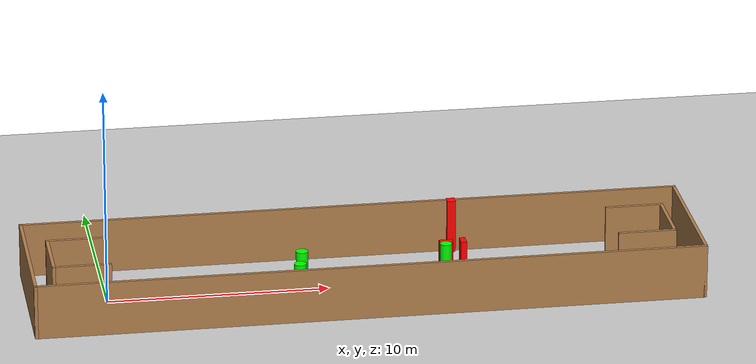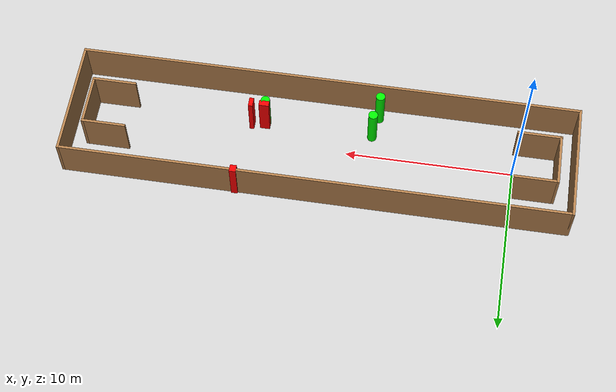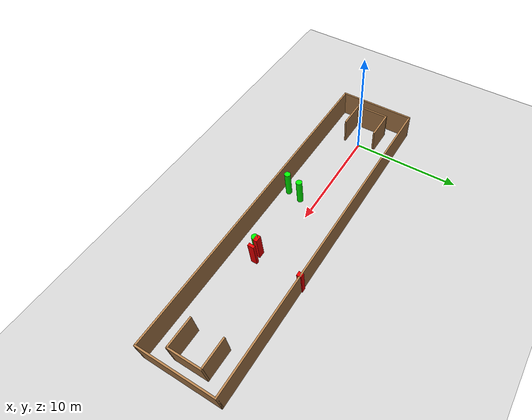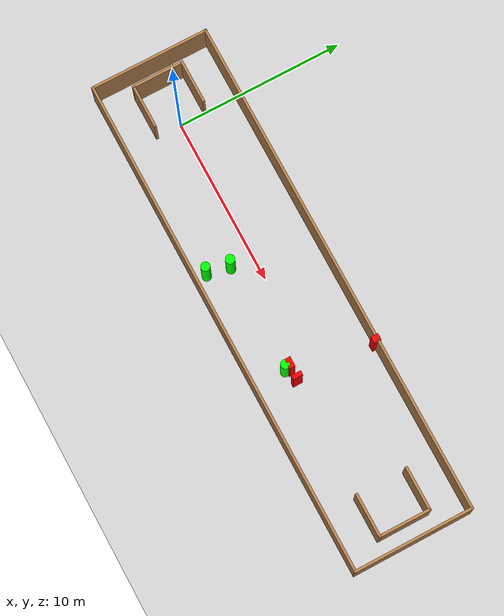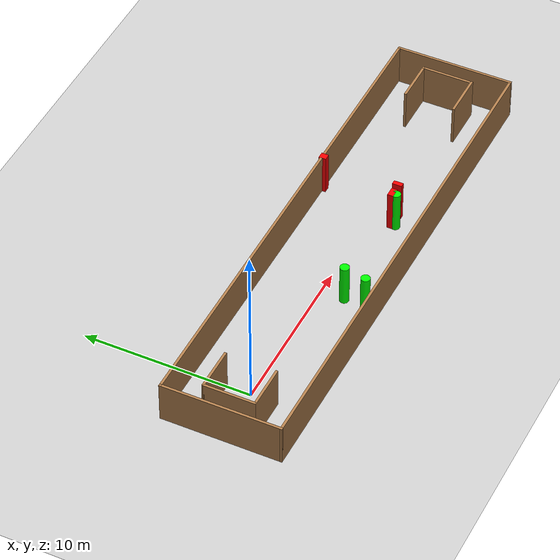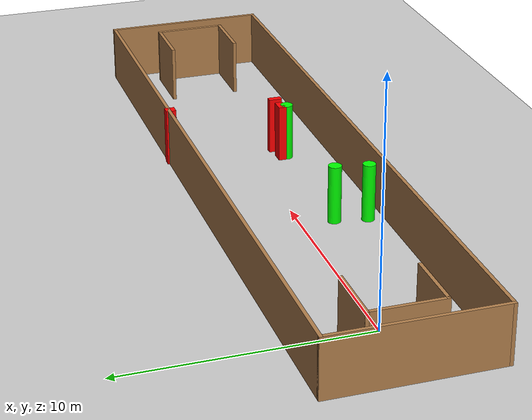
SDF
<sdf version="1.7">
 <world name="default">
  <light name="sun" type="directional">
   <pose>0 0 10 0 -0 0</pose>
   <diffuse>0.8 0.8 0.8 1</diffuse>
   <specular>0.2 0.2 0.2 1</specular>
   <attenuation>
    <range>1000</range>
    <constant>0.9</constant>
    <linear>0.01</linear>
    <quadratic>0.001</quadratic>
   </attenuation>
   <direction>-0.5 0.1 -0.9</direction>
   <spot><inner_angle>0</inner_angle><outer_angle>0</outer_angle><falloff>0</falloff></spot>
  </light>
  <model name="ground_plane">
   <static>1</static>
   <link name="link">
    <collision name="collision">
     <geometry><plane><normal>0 0 1</normal><size>100 100</size></plane></geometry>
     <surface>
      <contact><collide_bitmask>65535</collide_bitmask></contact>
      <friction><ode><mu>100</mu><mu2>50</mu2></ode></friction>
     </surface>
    </collision>
    <visual name="visual">
     <cast_shadows>0</cast_shadows>
     <geometry><plane><normal>0 0 1</normal><size>100 100</size></plane></geometry>
     <material>
      <script><uri>file://media/materials/scripts/gazebo.material</uri><name>Gazebo/Grey</name></script>
     </material>
    </visual>
   </link>
  </model>
  <gravity>0 0 -9.8</gravity>
  <magnetic_field>6e-06 2.3e-05 -4.2e-05</magnetic_field>
  <atmosphere type="adiabatic"/>
  <physics type="ode">
   <max_step_size>0.001</max_step_size>
   <real_time_factor>1</real_time_factor>
   <real_time_update_rate>1000</real_time_update_rate>
  </physics>
  <scene><ambient>0.4 0.4 0.4 1</ambient><background>0.7 0.7 0.7 1</background><shadows>1</shadows></scene>
  <spherical_coordinates>
   <surface_model>EARTH_WGS84</surface_model>
   <latitude_deg>0</latitude_deg>
   <longitude_deg>0</longitude_deg>
   <elevation>0</elevation>
   <heading_deg>0</heading_deg>
  </spherical_coordinates>
  <model name="my_base_walls">
   <link name="Wall_0">
    <collision name="Wall_0_Collision">
     <geometry><box><size>7.15 0.15 2.5</size></box></geometry>
     <pose>0 0 1.25 0 -0 0</pose>
    </collision>
    <visual name="Wall_0_Visual">
     <pose>0 0 1.25 0 -0 0</pose>
     <geometry><box><size>7.15 0.15 2.5</size></box></geometry>
     <material>
      <script><uri>file://media/materials/scripts/gazebo.material</uri><name>Gazebo/Wood</name></script>
      <ambient>1 1 1 1</ambient>
     </material>
     <meta><layer>0</layer></meta>
    </visual>
    <pose>-15 0 0 0 -0 1.5708</pose>
   </link>
   <link name="Wall_10">
    <collision name="Wall_10_Collision">
     <geometry><box><size>2.65 0.15 2.5</size></box></geometry>
     <pose>0 0 1.25 0 -0 0</pose>
    </collision>
    <visual name="Wall_10_Visual">
     <pose>0 0 1.25 0 -0 0</pose>
     <geometry><box><size>2.65 0.15 2.5</size></box></geometry>
     <material>
      <script><uri>file://media/materials/scripts/gazebo.material</uri><name>Gazebo/Wood</name></script>
      <ambient>1 1 1 1</ambient>
     </material>
     <meta><layer>0</layer></meta>
    </visual>
    <pose>-12.75 -1.5 0 0 -0 0</pose>
   </link>
   <link name="Wall_12">
    <collision name="Wall_12_Collision">
     <geometry><box><size>2.65 0.15 2.5</size></box></geometry>
     <pose>0 0 1.25 0 -0 0</pose>
    </collision>
    <visual name="Wall_12_Visual">
     <pose>0 0 1.25 0 -0 0</pose>
     <geometry><box><size>2.65 0.15 2.5</size></box></geometry>
     <material>
      <script><uri>file://media/materials/scripts/gazebo.material</uri><name>Gazebo/Wood</name></script>
      <ambient>1 1 1 1</ambient>
     </material>
     <meta><layer>0</layer></meta>
    </visual>
    <pose>-12.75 1.5 0 0 -0 0</pose>
   </link>
   <link name="Wall_14">
    <collision name="Wall_14_Collision">
     <geometry><box><size>3.15 0.15 2.5</size></box></geometry>
     <pose>0 0 1.25 0 -0 0</pose>
    </collision>
    <visual name="Wall_14_Visual">
     <pose>0 0 1.25 0 -0 0</pose>
     <geometry><box><size>3.15 0.15 2.5</size></box></geometry>
     <material>
      <script><uri>file://media/materials/scripts/gazebo.material</uri><name>Gazebo/Wood</name></script>
      <ambient>1 1 1 1</ambient>
     </material>
     <meta><layer>0</layer></meta>
    </visual>
    <pose>14 0 0 0 -0 -1.5708</pose>
   </link>
   <link name="Wall_15">
    <collision name="Wall_15_Collision">
     <geometry><box><size>2.65 0.15 2.5</size></box></geometry>
     <pose>0 0 1.25 0 -0 0</pose>
    </collision>
    <visual name="Wall_15_Visual">
     <pose>0 0 1.25 0 -0 0</pose>
     <geometry><box><size>2.65 0.15 2.5</size></box></geometry>
     <material>
      <script><uri>file://media/materials/scripts/gazebo.material</uri><name>Gazebo/Wood</name></script>
      <ambient>1 1 1 1</ambient>
     </material>
     <meta><layer>0</layer></meta>
    </visual>
    <pose>12.75 -1.5 0 0 -0 3.14159</pose>
   </link>
   <link name="Wall_17">
    <collision name="Wall_17_Collision">
     <geometry><box><size>2.65 0.15 2.5</size></box></geometry>
     <pose>0 0 1.25 0 -0 0</pose>
    </collision>
    <visual name="Wall_17_Visual">
     <pose>0 0 1.25 0 -0 0</pose>
     <geometry><box><size>2.65 0.15 2.5</size></box></geometry>
     <material>
      <script><uri>file://media/materials/scripts/gazebo.material</uri><name>Gazebo/Wood</name></script>
      <ambient>1 1 1 1</ambient>
     </material>
     <meta><layer>0</layer></meta>
    </visual>
    <pose>12.75 1.5 0 0 -0 3.14159</pose>
   </link>
   <link name="Wall_2">
    <collision name="Wall_2_Collision">
     <geometry><box><size>30.15 0.15 2.5</size></box></geometry>
     <pose>0 0 1.25 0 -0 0</pose>
    </collision>
    <visual name="Wall_2_Visual">
     <pose>0 0 1.25 0 -0 0</pose>
     <geometry><box><size>30.15 0.15 2.5</size></box></geometry>
     <material>
      <script><uri>file://media/materials/scripts/gazebo.material</uri><name>Gazebo/Wood</name></script>
      <ambient>1 1 1 1</ambient>
     </material>
     <meta><layer>0</layer></meta>
    </visual>
    <pose>-0 -3.5 0 0 -0 0</pose>
   </link>
   <link name="Wall_4">
    <collision name="Wall_4_Collision">
     <geometry><box><size>30.15 0.15 2.5</size></box></geometry>
     <pose>0 0 1.25 0 -0 0</pose>
    </collision>
    <visual name="Wall_4_Visual">
     <pose>0 0 1.25 0 -0 0</pose>
     <geometry><box><size>30.15 0.15 2.5</size></box></geometry>
     <material>
      <script><uri>file://media/materials/scripts/gazebo.material</uri><name>Gazebo/Wood</name></script>
      <ambient>1 1 1 1</ambient>
     </material>
     <meta><layer>0</layer></meta>
    </visual>
    <pose>-0 3.5 0 0 -0 0</pose>
   </link>
   <link name="Wall_6">
    <collision name="Wall_6_Collision">
     <geometry><box><size>7.15 0.15 2.5</size></box></geometry>
     <pose>0 0 1.25 0 -0 0</pose>
    </collision>
    <visual name="Wall_6_Visual">
     <pose>0 0 1.25 0 -0 0</pose>
     <geometry><box><size>7.15 0.15 2.5</size></box></geometry>
     <material>
      <script><uri>file://media/materials/scripts/gazebo.material</uri><name>Gazebo/Wood</name></script>
      <ambient>1 1 1 1</ambient>
     </material>
     <meta><layer>0</layer></meta>
    </visual>
    <pose>15 0 0 0 -0 -1.5708</pose>
   </link>
   <link name="Wall_9">
    <collision name="Wall_9_Collision">
     <geometry><box><size>3.15 0.15 2.5</size></box></geometry>
     <pose>0 0 1.25 0 -0 0</pose>
    </collision>
    <visual name="Wall_9_Visual">
     <pose>0 0 1.25 0 -0 0</pose>
     <geometry><box><size>3.15 0.15 2.5</size></box></geometry>
     <material>
      <script><uri>file://media/materials/scripts/gazebo.material</uri><name>Gazebo/Wood</name></script>
      <ambient>1 1 1 1</ambient>
     </material>
     <meta><layer>0</layer></meta>
    </visual>
    <pose>-14 0 0 0 -0 -1.5708</pose>
   </link>
   <static>1</static>
   <pose>11.5 0 0 0 -0 0</pose>
  </model>
  <model name="cylinder1">
   <static>1</static>
   <link name="link">
    <inertial>
     <mass>1</mass>
     <inertia><ixx>0.5</ixx><ixy>0</ixy><ixz>0</ixz><iyy>0.5</iyy><iyz>0</iyz><izz>1</izz></inertia>
    </inertial>
    <collision name="collision">
     <geometry><cylinder><radius>0.2720913923088007</radius><length>2.5</length></cylinder></geometry>
    </collision>
    <visual name="visual">
     <geometry><cylinder><radius>0.2720913923088007</radius><length>2.5</length></cylinder></geometry>
     <material>
      <ambient>0 1 0 1</ambient>
      <diffuse>0 1 0 1</diffuse>
      <specular>0.1 0.1 0.1 1</specular>
      <emissive>0 0 0 0</emissive>
     </material>
    </visual>
   </link>
   <pose>8.324206625020059 -2.7683398369764705 1.25 0 0 0</pose>
  </model>
  <model name="cylinder2">
   <static>1</static>
   <link name="link">
    <inertial>
     <mass>1</mass>
     <inertia><ixx>0.5</ixx><ixy>0</ixy><ixz>0</ixz><iyy>0.5</iyy><iyz>0</iyz><izz>1</izz></inertia>
    </inertial>
    <collision name="collision">
     <geometry><cylinder><radius>0.2686031411920399</radius><length>2.5</length></cylinder></geometry>
    </collision>
    <visual name="visual">
     <geometry><cylinder><radius>0.2686031411920399</radius><length>2.5</length></cylinder></geometry>
     <material>
      <ambient>0 1 0 1</ambient>
      <diffuse>0 1 0 1</diffuse>
      <specular>0.1 0.1 0.1 1</specular>
      <emissive>0 0 0 0</emissive>
     </material>
    </visual>
   </link>
   <pose>15.073153490086513 -1.5103302664237552 1.25 0 0 0</pose>
  </model>
  <model name="cylinder3">
   <static>1</static>
   <link name="link">
    <inertial>
     <mass>1</mass>
     <inertia><ixx>0.5</ixx><ixy>0</ixy><ixz>0</ixz><iyy>0.5</iyy><iyz>0</iyz><izz>1</izz></inertia>
    </inertial>
    <collision name="collision">
     <geometry><cylinder><radius>0.27674340920041784</radius><length>2.5</length></cylinder></geometry>
    </collision>
    <visual name="visual">
     <geometry><cylinder><radius>0.27674340920041784</radius><length>2.5</length></cylinder></geometry>
     <material>
      <ambient>0 1 0 1</ambient>
      <diffuse>0 1 0 1</diffuse>
      <specular>0.1 0.1 0.1 1</specular>
      <emissive>0 0 0 0</emissive>
     </material>
    </visual>
   </link>
   <pose>8.595148907303532 -1.4018542603949387 1.25 0 0 0</pose>
  </model>
  <model name="box1">
   <static>1</static>
   <link name="link">
    <inertial>
     <mass>1</mass>
     <inertia><ixx>0.083</ixx><ixy>0</ixy><ixz>0</ixz><iyy>0.083</iyy><iyz>0</iyz><izz>0.083</izz></inertia>
    </inertial>
    <collision name="collision">
     <geometry><box><size>0.26197331507720556 0.5692326307799982 2.5</size></box></geometry>
    </collision>
    <visual name="visual">
     <geometry><box><size>0.26197331507720556 0.5692326307799982 2.5</size></box></geometry>
     <material>
      <ambient>1 0 0 1</ambient>
      <diffuse>1 0 0 1</diffuse>
      <specular>0.1 0.1 0.1 1</specular>
      <emissive>0 0 0 0</emissive>
     </material>
    </visual>
    <sensor name="my_contact" type="contact">
     <contact><collision>box_collision</collision><topic>__default_topic__</topic></contact>
    </sensor>
   </link>
   <pose>15.891702451582685 -1.235428045505913 1.25 0 0 0</pose>
  </model>
  <model name="box2">
   <static>1</static>
   <link name="link">
    <inertial>
     <mass>1</mass>
     <inertia><ixx>0.083</ixx><ixy>0</ixy><ixz>0</ixz><iyy>0.083</iyy><iyz>0</iyz><izz>0.083</izz></inertia>
    </inertial>
    <collision name="collision">
     <geometry><box><size>0.388630632219558 0.43313348286497483 2.5</size></box></geometry>
    </collision>
    <visual name="visual">
     <geometry><box><size>0.388630632219558 0.43313348286497483 2.5</size></box></geometry>
     <material>
      <ambient>1 0 0 1</ambient>
      <diffuse>1 0 0 1</diffuse>
      <specular>0.1 0.1 0.1 1</specular>
      <emissive>0 0 0 0</emissive>
     </material>
    </visual>
    <sensor name="my_contact" type="contact">
     <contact><collision>box_collision</collision><topic>__default_topic__</topic></contact>
    </sensor>
   </link>
   <pose>16.129097577319936 3.436152795102303 1.25 0 0 0</pose>
  </model>
  <model name="box3">
   <static>1</static>
   <link name="link">
    <inertial>
     <mass>1</mass>
     <inertia><ixx>0.083</ixx><ixy>0</ixy><ixz>0</ixz><iyy>0.083</iyy><iyz>0</iyz><izz>0.083</izz></inertia>
    </inertial>
    <collision name="collision">
     <geometry><box><size>0.5925896914957316 0.346090769341916 2.5</size></box></geometry>
    </collision>
    <visual name="visual">
     <geometry><box><size>0.5925896914957316 0.346090769341916 2.5</size></box></geometry>
     <material>
      <ambient>1 0 0 1</ambient>
      <diffuse>1 0 0 1</diffuse>
      <specular>0.1 0.1 0.1 1</specular>
      <emissive>0 0 0 0</emissive>
     </material>
    </visual>
    <sensor name="my_contact" type="contact">
     <contact><collision>box_collision</collision><topic>__default_topic__</topic></contact>
    </sensor>
   </link>
   <pose>15.114767982497085 -1.2563228697224047 1.25 0 0 0</pose>
  </model>
 </world>
</sdf>
